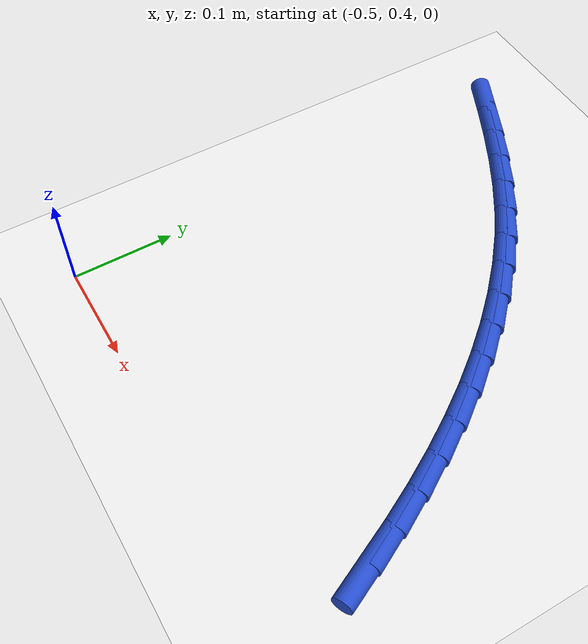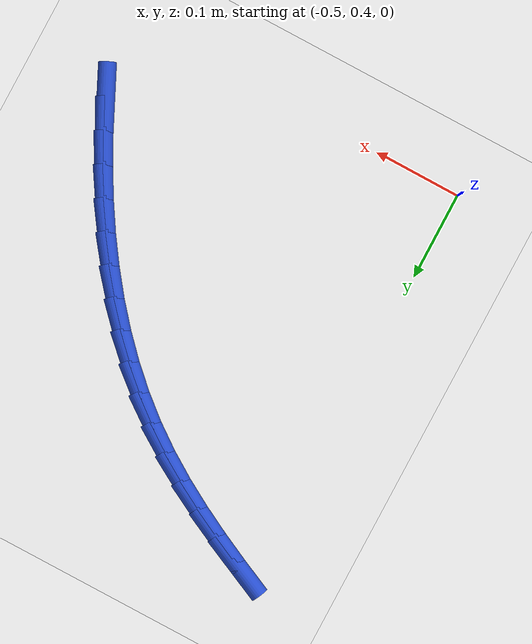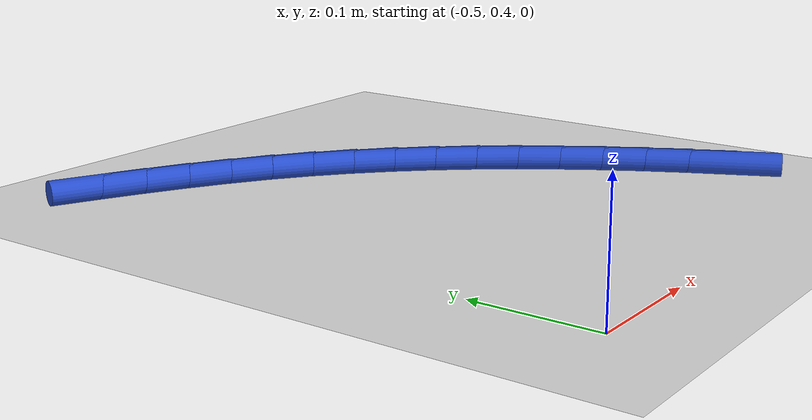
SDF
<sdf version="1.6">
 <world name="default">
  <model name="ground_plane">
   <static>1</static>
   <link name="link">
    <collision name="collision">
     <geometry><plane><normal>0 0 1</normal><size>100 100</size></plane></geometry>
     <surface><friction><ode><mu>100</mu><mu2>50</mu2></ode></friction></surface>
    </collision>
    <visual name="visual">
     <cast_shadows>0</cast_shadows>
     <geometry><plane><normal>0 0 1</normal><size>100 100</size></plane></geometry>
     <material>
      <script><uri>file://media/materials/scripts/gazebo.material</uri><name>Gazebo/WhiteGlow</name></script>
     </material>
    </visual>
   </link>
  </model>
  <model name="line">
   <link name="link_14">
    <pose>-0.11545344362031383 0.4882696212063039 0.01 0 1.57 -1.1269881659741003</pose>
    <collision name="collision">
     <geometry><cylinder><radius>0.01</radius><length>0.08</length></cylinder></geometry>
    </collision>
    <visual name="visual">
     <material>
      <script><name>Gazebo/Blue</name><uri>file://media/materials/scripts/gazebo.material</uri></script>
     </material>
     <geometry><cylinder><radius>0.01</radius><length>0.08</length></cylinder></geometry>
    </visual>
   </link>
   <link name="link_15">
    <pose>-0.13124794639543733 0.5214903572073435 0.01 0 1.57 -1.0920713761530896</pose>
    <collision name="collision">
     <geometry><cylinder><radius>0.01</radius><length>0.08</length></cylinder></geometry>
    </collision>
    <visual name="visual">
     <material>
      <script><name>Gazebo/Blue</name><uri>file://media/materials/scripts/gazebo.material</uri></script>
     </material>
     <geometry><cylinder><radius>0.01</radius><length>0.08</length></cylinder></geometry>
    </visual>
   </link>
   <link name="link_16">
    <pose>-0.14813027369732415 0.5540194724035806 0.01 0 1.57 -1.054463975015782</pose>
    <collision name="collision">
     <geometry><cylinder><radius>0.01</radius><length>0.08</length></cylinder></geometry>
    </collision>
    <visual name="visual">
     <material>
      <script><name>Gazebo/Blue</name><uri>file://media/materials/scripts/gazebo.material</uri></script>
     </material>
     <geometry><cylinder><radius>0.01</radius><length>0.08</length></cylinder></geometry>
    </visual>
   </link>
   <link name="link_17">
    <pose>-0.16613593848279976 0.5857362259565936 0.01 0 1.57 -1.0139571616648602</pose>
    <collision name="collision">
     <geometry><cylinder><radius>0.01</radius><length>0.08</length></cylinder></geometry>
    </collision>
    <visual name="visual">
     <material>
      <script><name>Gazebo/Blue</name><uri>file://media/materials/scripts/gazebo.material</uri></script>
     </material>
     <geometry><cylinder><radius>0.01</radius><length>0.08</length></cylinder></geometry>
    </visual>
   </link>
   <link name="link_18">
    <pose>-0.18530045370868964 0.6165198770279604 0.01 0 1.57 -0.9703468603841444</pose>
    <collision name="collision">
     <geometry><cylinder><radius>0.01</radius><length>0.08</length></cylinder></geometry>
    </collision>
    <visual name="visual">
     <material>
      <script><name>Gazebo/Blue</name><uri>file://media/materials/scripts/gazebo.material</uri></script>
     </material>
     <geometry><cylinder><radius>0.01</radius><length>0.08</length></cylinder></geometry>
    </visual>
   </link>
   <link name="link_19">
    <pose>-0.20565933233181904 0.6462496847792587 0.01 0 1.57 -0.9234438483019581</pose>
    <collision name="collision">
     <geometry><cylinder><radius>0.01</radius><length>0.08</length></cylinder></geometry>
    </collision>
    <visual name="visual">
     <material>
      <script><name>Gazebo/Blue</name><uri>file://media/materials/scripts/gazebo.material</uri></script>
     </material>
     <geometry><cylinder><radius>0.01</radius><length>0.08</length></cylinder></geometry>
    </visual>
   </link>
   <link name="link_20">
    <pose>-0.2272480873090137 0.6748049083720674 0.01 0 1.57 -0.8730872771569701</pose>
    <collision name="collision">
     <geometry><cylinder><radius>0.01</radius><length>0.08</length></cylinder></geometry>
    </collision>
    <visual name="visual">
     <material>
      <script><name>Gazebo/Blue</name><uri>file://media/materials/scripts/gazebo.material</uri></script>
     </material>
     <geometry><cylinder><radius>0.01</radius><length>0.08</length></cylinder></geometry>
    </visual>
   </link>
   <link name="link_21">
    <pose>-0.25010223159709877 0.7020648069679638 0.01 0 1.57 -0.8191618086923206</pose>
    <collision name="collision">
     <geometry><cylinder><radius>0.01</radius><length>0.08</length></cylinder></geometry>
    </collision>
    <visual name="visual">
     <material>
      <script><name>Gazebo/Blue</name><uri>file://media/materials/scripts/gazebo.material</uri></script>
     </material>
     <geometry><cylinder><radius>0.01</radius><length>0.08</length></cylinder></geometry>
    </visual>
   </link>
   <link name="link_22">
    <pose>-0.27425727815289974 0.7279086397285263 0.01 0 1.57 -0.7616180754341912</pose>
    <collision name="collision">
     <geometry><cylinder><radius>0.01</radius><length>0.08</length></cylinder></geometry>
    </collision>
    <visual name="visual">
     <material>
      <script><name>Gazebo/Blue</name><uri>file://media/materials/scripts/gazebo.material</uri></script>
     </material>
     <geometry><cylinder><radius>0.01</radius><length>0.08</length></cylinder></geometry>
    </visual>
   </link>
   <link name="link_23">
    <pose>-0.29974873993324214 0.7522156658153332 0.01 0 1.57 -0.7004953626579496</pose>
    <collision name="collision">
     <geometry><cylinder><radius>0.01</radius><length>0.08</length></cylinder></geometry>
    </collision>
    <visual name="visual">
     <material>
      <script><name>Gazebo/Blue</name><uri>file://media/materials/scripts/gazebo.material</uri></script>
     </material>
     <geometry><cylinder><radius>0.01</radius><length>0.08</length></cylinder></geometry>
    </visual>
   </link>
   <link name="link_24">
    <pose>-0.32661212989495125 0.7748651443899621 0.01 0 1.57 -0.6363671307705628</pose>
    <collision name="collision">
     <geometry><cylinder><radius>0.01</radius><length>0.08</length></cylinder></geometry>
    </collision>
    <visual name="visual">
     <material>
      <script><name>Gazebo/Blue</name><uri>file://media/materials/scripts/gazebo.material</uri></script>
     </material>
     <geometry><cylinder><radius>0.01</radius><length>0.08</length></cylinder></geometry>
    </visual>
   </link>
   <link name="link_25">
    <pose>-0.35487483675196424 0.7957488059997493 0.01 0 1.57 -0.5762403225496664</pose>
    <collision name="collision">
     <geometry><cylinder><radius>0.01</radius><length>0.08</length></cylinder></geometry>
    </collision>
    <visual name="visual">
     <material>
      <script><name>Gazebo/Blue</name><uri>file://media/materials/scripts/gazebo.material</uri></script>
     </material>
     <geometry><cylinder><radius>0.01</radius><length>0.08</length></cylinder></geometry>
    </visual>
   </link>
   <link name="link_26">
    <pose>-0.3844347936793586 0.8149571061668767 0.01 0 1.57 -0.5257075585068931</pose>
    <collision name="collision">
     <geometry><cylinder><radius>0.01</radius><length>0.08</length></cylinder></geometry>
    </collision>
    <visual name="visual">
     <material>
      <script><name>Gazebo/Blue</name><uri>file://media/materials/scripts/gazebo.material</uri></script>
     </material>
     <geometry><cylinder><radius>0.01</radius><length>0.08</length></cylinder></geometry>
    </visual>
   </link>
   <link name="link_27">
    <pose>-0.4150860811227848 0.8327399229552338 0.01 0 1.57 -0.4848498554617234</pose>
    <collision name="collision">
     <geometry><cylinder><radius>0.01</radius><length>0.08</length></cylinder></geometry>
    </collision>
    <visual name="visual">
     <material>
      <script><name>Gazebo/Blue</name><uri>file://media/materials/scripts/gazebo.material</uri></script>
     </material>
     <geometry><cylinder><radius>0.01</radius><length>0.08</length></cylinder></geometry>
    </visual>
   </link>
   <link name="link_28">
    <pose>-0.44661985392086223 0.8493516254778275 0.01 0 1.57 -0.45344323892102056</pose>
    <collision name="collision">
     <geometry><cylinder><radius>0.01</radius><length>0.08</length></cylinder></geometry>
    </collision>
    <visual name="visual">
     <material>
      <script><name>Gazebo/Blue</name><uri>file://media/materials/scripts/gazebo.material</uri></script>
     </material>
     <geometry><cylinder><radius>0.01</radius><length>0.08</length></cylinder></geometry>
    </visual>
   </link>
   <link name="link_29">
    <pose>-0.4788272669122114 0.8650465828476643 0.01 0 1.57 -0.4312237591029039</pose>
    <collision name="collision">
     <geometry><cylinder><radius>0.01</radius><length>0.08</length></cylinder></geometry>
    </collision>
    <visual name="visual">
     <material>
      <script><name>Gazebo/Blue</name><uri>file://media/materials/scripts/gazebo.material</uri></script>
     </material>
     <geometry><cylinder><radius>0.01</radius><length>0.08</length></cylinder></geometry>
    </visual>
   </link>
  </model>
 </world>
</sdf>
